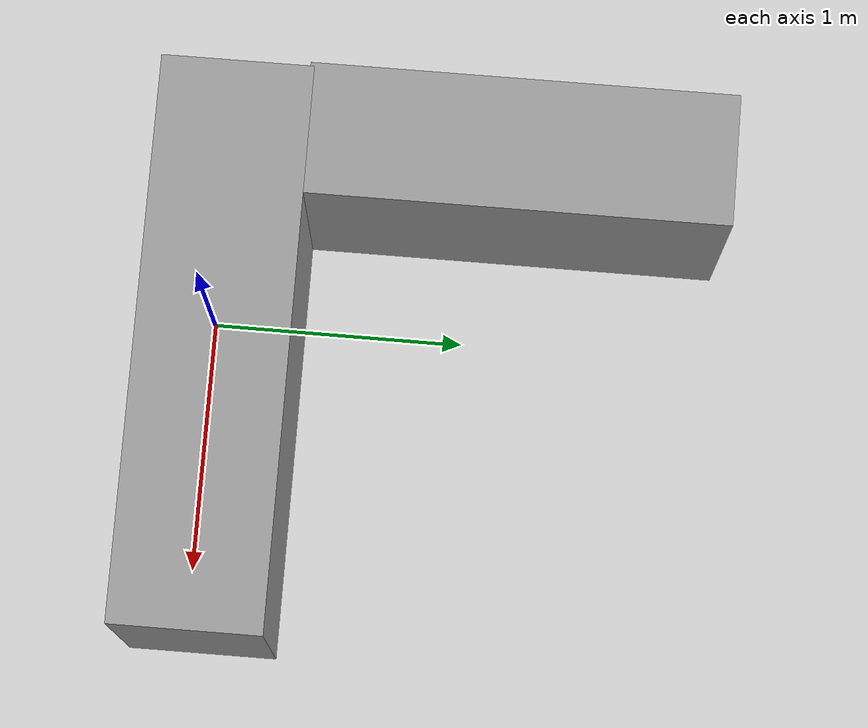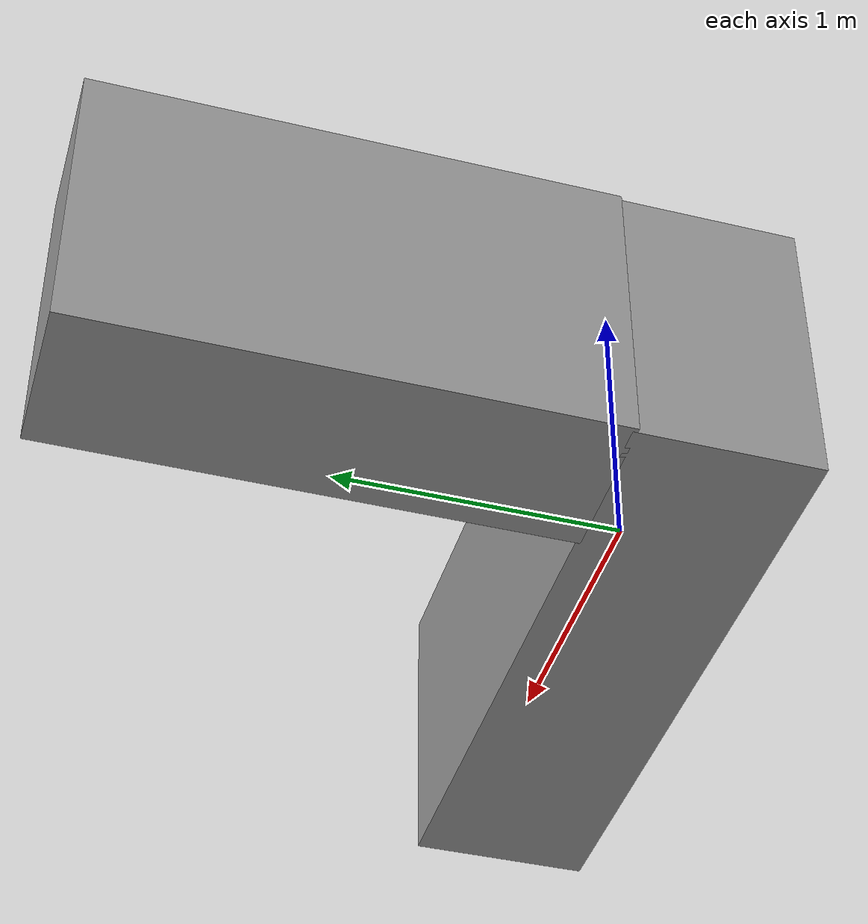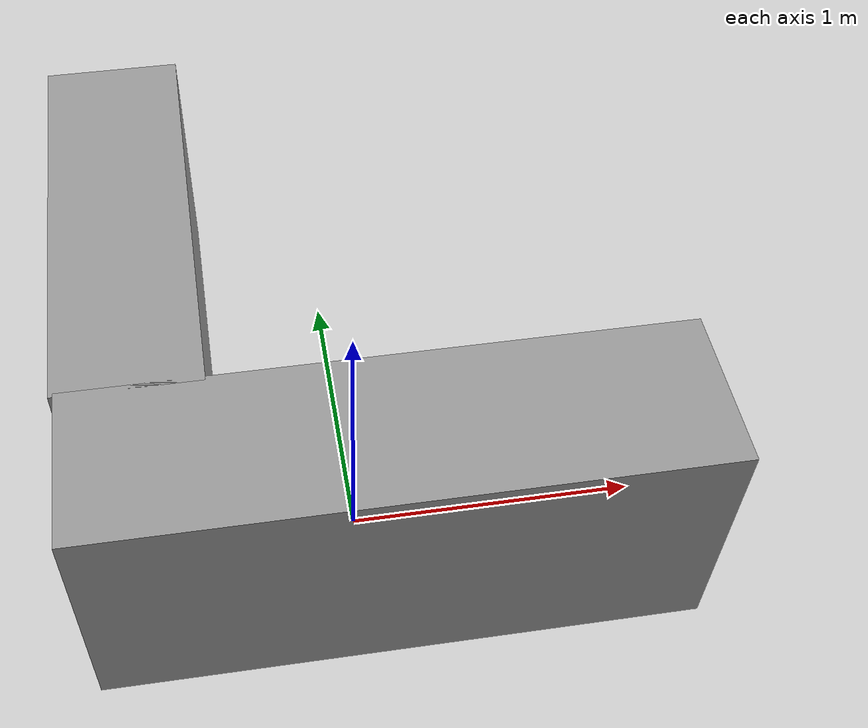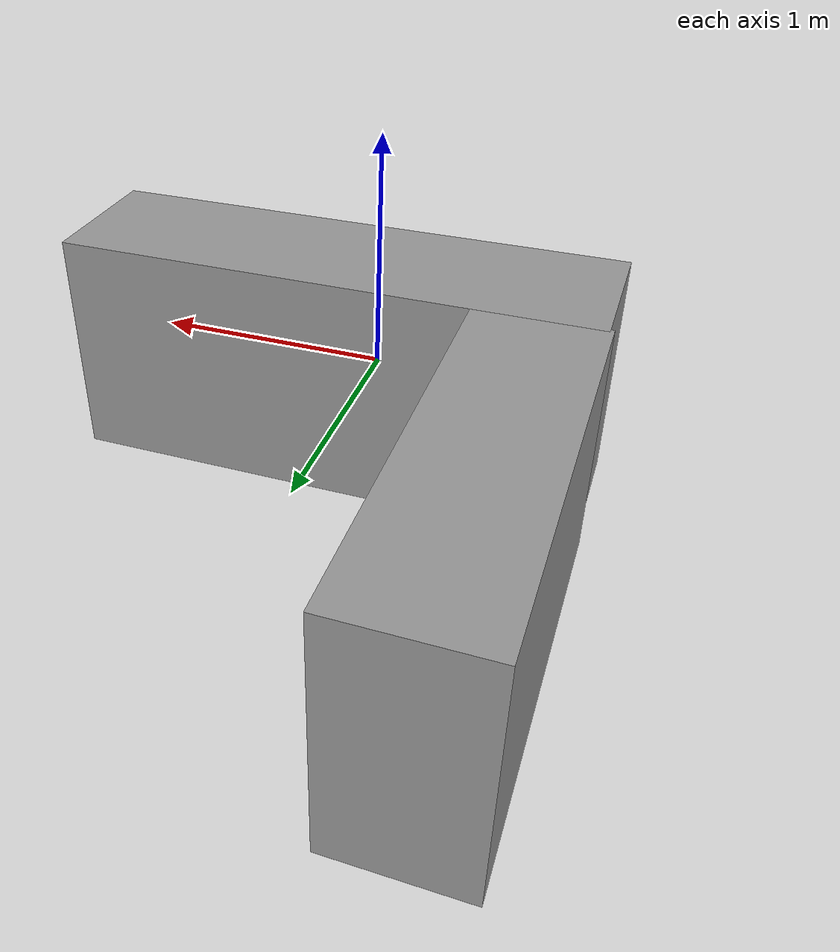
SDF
<?xml version='1.0'?>
<sdf version='1.6'>
  <model name='Counter_Top'>
    <link name='link_4'>
      <pose frame=''>0.154773 0.032272 0 0 -0 0</pose>
      <inertial>
        <mass>1.37733</mass>
        <inertia>
          <ixx>0.157254</ixx>
          <ixy>0</ixy>
          <ixz>0</ixz>
          <iyy>0.703133</iyy>
          <iyz>0</iyz>
          <izz>0.630831</izz>
        </inertia>
        <pose frame=''>0 0 0 0 -0 0</pose>
      </inertial>
      <gravity>1</gravity>
      <self_collide>0</self_collide>
      <kinematic>0</kinematic>
      <visual name='visual'>
        <pose frame=''>0 0 0 0 -0 0</pose>
        <geometry>
          <box>
            <size>2.26408 0.608339 1</size>
          </box>
        </geometry>
        <material>
          <lighting>1</lighting>
          <script>
            <uri>file://media/materials/scripts/gazebo.material</uri>
            <name>Gazebo/Grey</name>
          </script>
          <shader type='pixel'>
            <normal_map>__default__</normal_map>
          </shader>
          <ambient>0.3 0.3 0.3 1</ambient>
          <diffuse>0.7 0.7 0.7 1</diffuse>
          <specular>0.01 0.01 0.01 1</specular>
          <emissive>0 0 0 1</emissive>
        </material>
        <transparency>0</transparency>
        <cast_shadows>1</cast_shadows>
      </visual>
      <collision name='collision'>
        <laser_retro>0</laser_retro>
        <max_contacts>10</max_contacts>
        <pose frame=''>0 0 0 0 -0 0</pose>
        <geometry>
          <box>
            <size>2.26408 0.608339 1</size>
          </box>
        </geometry>
        <surface>
          <friction>
            <ode>
              <mu>1</mu>
              <mu2>1</mu2>
              <fdir1>0 0 0</fdir1>
              <slip1>0</slip1>
              <slip2>0</slip2>
            </ode>
            <torsional>
              <coefficient>1</coefficient>
              <patch_radius>0</patch_radius>
              <surface_radius>0</surface_radius>
              <use_patch_radius>1</use_patch_radius>
              <ode>
                <slip>0</slip>
              </ode>
            </torsional>
          </friction>
          <bounce>
            <restitution_coefficient>0</restitution_coefficient>
            <threshold>1e+06</threshold>
          </bounce>
          <contact>
            <collide_without_contact>0</collide_without_contact>
            <collide_without_contact_bitmask>1</collide_without_contact_bitmask>
            <collide_bitmask>1</collide_bitmask>
            <ode>
              <soft_cfm>0</soft_cfm>
              <soft_erp>0.2</soft_erp>
              <kp>1e+13</kp>
              <kd>1</kd>
              <max_vel>0.01</max_vel>
              <min_depth>0</min_depth>
            </ode>
            <bullet>
              <split_impulse>1</split_impulse>
              <split_impulse_penetration_threshold>-0.01</split_impulse_penetration_threshold>
              <soft_cfm>0</soft_cfm>
              <soft_erp>0.2</soft_erp>
              <kp>1e+13</kp>
              <kd>1</kd>
            </bullet>
          </contact>
        </surface>
      </collision>
    </link>
    <link name='link_5'>
      <pose frame=''>-0.726732 1.17428 0 0 -0 0</pose>
      <inertial>
        <mass>0.9068</mass>
        <inertia>
          <ixx>0.295862</ixx>
          <ixy>0</ixy>
          <ixz>0</ixz>
          <iyy>0.0968837</iyy>
          <iyz>0</iyz>
          <izz>0.241613</izz>
        </inertia>
        <pose frame=''>0 0 0 0 -0 0</pose>
      </inertial>
      <visual name='visual'>
        <pose frame=''>0 0 0 0 -0 0</pose>
        <geometry>
          <box>
            <size>0.531127 1.70741 1</size>
          </box>
        </geometry>
        <material>
          <lighting>1</lighting>
          <script>
            <uri>file://media/materials/scripts/gazebo.material</uri>
            <name>Gazebo/Grey</name>
          </script>
          <shader type='pixel'/>
          <ambient>0.3 0.3 0.3 1</ambient>
          <diffuse>0.7 0.7 0.7 1</diffuse>
          <specular>0.01 0.01 0.01 1</specular>
          <emissive>0 0 0 1</emissive>
        </material>
        <transparency>0</transparency>
        <cast_shadows>1</cast_shadows>
      </visual>
      <collision name='collision'>
        <laser_retro>0</laser_retro>
        <max_contacts>10</max_contacts>
        <pose frame=''>0 0 0 0 -0 0</pose>
        <geometry>
          <box>
            <size>0.531127 1.70741 1</size>
          </box>
        </geometry>
        <surface>
          <friction>
            <ode>
              <mu>1</mu>
              <mu2>1</mu2>
              <fdir1>0 0 0</fdir1>
              <slip1>0</slip1>
              <slip2>0</slip2>
            </ode>
            <torsional>
              <coefficient>1</coefficient>
              <patch_radius>0</patch_radius>
              <surface_radius>0</surface_radius>
              <use_patch_radius>1</use_patch_radius>
              <ode>
                <slip>0</slip>
              </ode>
            </torsional>
          </friction>
          <bounce>
            <restitution_coefficient>0</restitution_coefficient>
            <threshold>1e+06</threshold>
          </bounce>
          <contact>
            <collide_without_contact>0</collide_without_contact>
            <collide_without_contact_bitmask>1</collide_without_contact_bitmask>
            <collide_bitmask>1</collide_bitmask>
            <ode>
              <soft_cfm>0</soft_cfm>
              <soft_erp>0.2</soft_erp>
              <kp>1e+13</kp>
              <kd>1</kd>
              <max_vel>0.01</max_vel>
              <min_depth>0</min_depth>
            </ode>
            <bullet>
              <split_impulse>1</split_impulse>
              <split_impulse_penetration_threshold>-0.01</split_impulse_penetration_threshold>
              <soft_cfm>0</soft_cfm>
              <soft_erp>0.2</soft_erp>
              <kp>1e+13</kp>
              <kd>1</kd>
            </bullet>
          </contact>
        </surface>
      </collision>
    </link>
    <joint name='link_4_JOINT_2' type='fixed'>
      <parent>link_4</parent>
      <child>link_5</child>
      <pose frame=''>0 0 0 0 -0 0</pose>
      <physics>
        <ode>
          <limit>
            <cfm>0</cfm>
            <erp>0.2</erp>
          </limit>
          <suspension>
            <cfm>0</cfm>
            <erp>0.2</erp>
          </suspension>
        </ode>
      </physics>
    </joint>
    <static>0</static>
    <allow_auto_disable>1</allow_auto_disable>
  </model>
</sdf>
